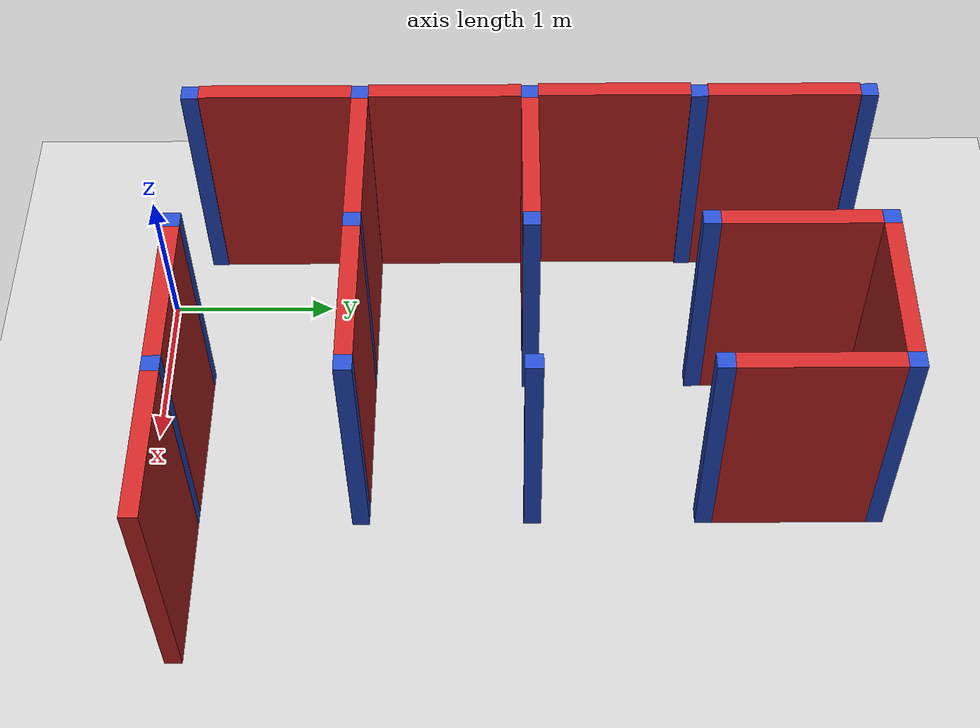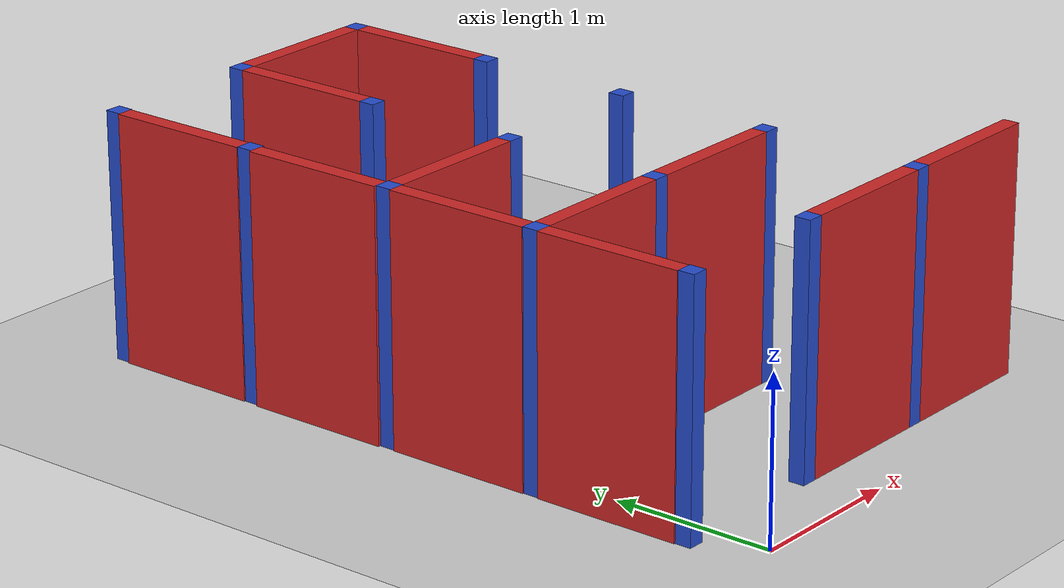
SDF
<sdf version="1.7">
 <world name="default">
  <model name="ground_plane">
   <static>1</static>
   <link name="link">
    <collision name="collision">
     <geometry><plane><normal>0 0 1</normal><size>100 100</size></plane></geometry>
     <surface><friction><ode><mu>100</mu><mu2>50</mu2></ode></friction></surface>
    </collision>
    <visual name="visual">
     <cast_shadows>0</cast_shadows>
     <geometry><plane><normal>0 0 1</normal><size>100 100</size></plane></geometry>
     <material>
      <script><uri>file://media/materials/scripts/gazebo.material</uri><name>Gazebo/Grey</name></script>
     </material>
    </visual>
   </link>
  </model>
  <model name="maze_demo">
   <link name="Joint_5_-11">
    <pose>5 -11 0 0 -0 0</pose>
    <visual name="Wall_2_Visual">
     <pose>0 0 0.75 0 -0 0</pose>
     <geometry><box><size>0.1 0.1 1.5</size></box></geometry>
     <material>
      <script><uri>file://media/materials/scripts/gazebo.material</uri><name>Gazebo/Blue</name></script>
      <ambient>0.996078 0.47451 0.0196078 1</ambient>
      <shader type="pixel"/>
     </material>
     <meta><layer>0</layer></meta>
    </visual>
    <collision name="Wall_2_Collision">
     <pose>0 0 0.75 0 -0 0</pose>
     <geometry><box><size>0.1 0.1 1.5</size></box></geometry>
     <surface>
      <friction>
       <ode><mu>1</mu><mu2>1</mu2><fdir1>0 0 0</fdir1><slip1>0</slip1><slip2>0</slip2></ode>
       <torsional>
        <coefficient>1</coefficient>
        <patch_radius>0</patch_radius>
        <surface_radius>0</surface_radius>
        <use_patch_radius>1</use_patch_radius>
        <ode><slip>0</slip></ode>
       </torsional>
      </friction>
      <bounce><restitution_coefficient>0</restitution_coefficient><threshold>1e+06</threshold></bounce>
      <contact>
       <collide_without_contact>0</collide_without_contact>
       <collide_without_contact_bitmask>1</collide_without_contact_bitmask>
       <collide_bitmask>1</collide_bitmask>
       <ode>
        <soft_cfm>0</soft_cfm>
        <soft_erp>0.2</soft_erp>
        <kp>1e+13</kp>
        <kd>1</kd>
        <max_vel>0.01</max_vel>
        <min_depth>0</min_depth>
       </ode>
       <bullet>
        <split_impulse>1</split_impulse>
        <split_impulse_penetration_threshold>-0.01</split_impulse_penetration_threshold>
        <soft_cfm>0</soft_cfm>
        <soft_erp>0.2</soft_erp>
        <kp>1e+13</kp>
        <kd>1</kd>
       </bullet>
      </contact>
     </surface>
    </collision>
   </link>
   <link name="Joint_5_-12">
    <pose>5 -12 0 0 -0 0</pose>
    <visual name="Wall_2_Visual">
     <pose>0 0 0.75 0 -0 0</pose>
     <geometry><box><size>0.1 0.1 1.5</size></box></geometry>
     <material>
      <script><uri>file://media/materials/scripts/gazebo.material</uri><name>Gazebo/Blue</name></script>
      <ambient>0.996078 0.47451 0.0196078 1</ambient>
      <shader type="pixel"/>
     </material>
     <meta><layer>0</layer></meta>
    </visual>
    <collision name="Wall_2_Collision">
     <pose>0 0 0.75 0 -0 0</pose>
     <geometry><box><size>0.1 0.1 1.5</size></box></geometry>
     <surface>
      <friction>
       <ode><mu>1</mu><mu2>1</mu2><fdir1>0 0 0</fdir1><slip1>0</slip1><slip2>0</slip2></ode>
       <torsional>
        <coefficient>1</coefficient>
        <patch_radius>0</patch_radius>
        <surface_radius>0</surface_radius>
        <use_patch_radius>1</use_patch_radius>
        <ode><slip>0</slip></ode>
       </torsional>
      </friction>
      <bounce><restitution_coefficient>0</restitution_coefficient><threshold>1e+06</threshold></bounce>
      <contact>
       <collide_without_contact>0</collide_without_contact>
       <collide_without_contact_bitmask>1</collide_without_contact_bitmask>
       <collide_bitmask>1</collide_bitmask>
       <ode>
        <soft_cfm>0</soft_cfm>
        <soft_erp>0.2</soft_erp>
        <kp>1e+13</kp>
        <kd>1</kd>
        <max_vel>0.01</max_vel>
        <min_depth>0</min_depth>
       </ode>
       <bullet>
        <split_impulse>1</split_impulse>
        <split_impulse_penetration_threshold>-0.01</split_impulse_penetration_threshold>
        <soft_cfm>0</soft_cfm>
        <soft_erp>0.2</soft_erp>
        <kp>1e+13</kp>
        <kd>1</kd>
       </bullet>
      </contact>
     </surface>
    </collision>
   </link>
   <link name="Joint_5_-13">
    <pose>5 -13 0 0 -0 0</pose>
    <visual name="Wall_2_Visual">
     <pose>0 0 0.75 0 -0 0</pose>
     <geometry><box><size>0.1 0.1 1.5</size></box></geometry>
     <material>
      <script><uri>file://media/materials/scripts/gazebo.material</uri><name>Gazebo/Blue</name></script>
      <ambient>0.996078 0.47451 0.0196078 1</ambient>
      <shader type="pixel"/>
     </material>
     <meta><layer>0</layer></meta>
    </visual>
    <collision name="Wall_2_Collision">
     <pose>0 0 0.75 0 -0 0</pose>
     <geometry><box><size>0.1 0.1 1.5</size></box></geometry>
     <surface>
      <friction>
       <ode><mu>1</mu><mu2>1</mu2><fdir1>0 0 0</fdir1><slip1>0</slip1><slip2>0</slip2></ode>
       <torsional>
        <coefficient>1</coefficient>
        <patch_radius>0</patch_radius>
        <surface_radius>0</surface_radius>
        <use_patch_radius>1</use_patch_radius>
        <ode><slip>0</slip></ode>
       </torsional>
      </friction>
      <bounce><restitution_coefficient>0</restitution_coefficient><threshold>1e+06</threshold></bounce>
      <contact>
       <collide_without_contact>0</collide_without_contact>
       <collide_without_contact_bitmask>1</collide_without_contact_bitmask>
       <collide_bitmask>1</collide_bitmask>
       <ode>
        <soft_cfm>0</soft_cfm>
        <soft_erp>0.2</soft_erp>
        <kp>1e+13</kp>
        <kd>1</kd>
        <max_vel>0.01</max_vel>
        <min_depth>0</min_depth>
       </ode>
       <bullet>
        <split_impulse>1</split_impulse>
        <split_impulse_penetration_threshold>-0.01</split_impulse_penetration_threshold>
        <soft_cfm>0</soft_cfm>
        <soft_erp>0.2</soft_erp>
        <kp>1e+13</kp>
        <kd>1</kd>
       </bullet>
      </contact>
     </surface>
    </collision>
   </link>
   <link name="Joint_5_-14">
    <pose>5 -14 0 0 -0 0</pose>
    <visual name="Wall_2_Visual">
     <pose>0 0 0.75 0 -0 0</pose>
     <geometry><box><size>0.1 0.1 1.5</size></box></geometry>
     <material>
      <script><uri>file://media/materials/scripts/gazebo.material</uri><name>Gazebo/Blue</name></script>
      <ambient>0.996078 0.47451 0.0196078 1</ambient>
      <shader type="pixel"/>
     </material>
     <meta><layer>0</layer></meta>
    </visual>
    <collision name="Wall_2_Collision">
     <pose>0 0 0.75 0 -0 0</pose>
     <geometry><box><size>0.1 0.1 1.5</size></box></geometry>
     <surface>
      <friction>
       <ode><mu>1</mu><mu2>1</mu2><fdir1>0 0 0</fdir1><slip1>0</slip1><slip2>0</slip2></ode>
       <torsional>
        <coefficient>1</coefficient>
        <patch_radius>0</patch_radius>
        <surface_radius>0</surface_radius>
        <use_patch_radius>1</use_patch_radius>
        <ode><slip>0</slip></ode>
       </torsional>
      </friction>
      <bounce><restitution_coefficient>0</restitution_coefficient><threshold>1e+06</threshold></bounce>
      <contact>
       <collide_without_contact>0</collide_without_contact>
       <collide_without_contact_bitmask>1</collide_without_contact_bitmask>
       <collide_bitmask>1</collide_bitmask>
       <ode>
        <soft_cfm>0</soft_cfm>
        <soft_erp>0.2</soft_erp>
        <kp>1e+13</kp>
        <kd>1</kd>
        <max_vel>0.01</max_vel>
        <min_depth>0</min_depth>
       </ode>
       <bullet>
        <split_impulse>1</split_impulse>
        <split_impulse_penetration_threshold>-0.01</split_impulse_penetration_threshold>
        <soft_cfm>0</soft_cfm>
        <soft_erp>0.2</soft_erp>
        <kp>1e+13</kp>
        <kd>1</kd>
       </bullet>
      </contact>
     </surface>
    </collision>
   </link>
   <link name="Joint_5_-15">
    <pose>5 -15 0 0 -0 0</pose>
    <visual name="Wall_2_Visual">
     <pose>0 0 0.75 0 -0 0</pose>
     <geometry><box><size>0.1 0.1 1.5</size></box></geometry>
     <material>
      <script><uri>file://media/materials/scripts/gazebo.material</uri><name>Gazebo/Blue</name></script>
      <ambient>0.996078 0.47451 0.0196078 1</ambient>
      <shader type="pixel"/>
     </material>
     <meta><layer>0</layer></meta>
    </visual>
    <collision name="Wall_2_Collision">
     <pose>0 0 0.75 0 -0 0</pose>
     <geometry><box><size>0.1 0.1 1.5</size></box></geometry>
     <surface>
      <friction>
       <ode><mu>1</mu><mu2>1</mu2><fdir1>0 0 0</fdir1><slip1>0</slip1><slip2>0</slip2></ode>
       <torsional>
        <coefficient>1</coefficient>
        <patch_radius>0</patch_radius>
        <surface_radius>0</surface_radius>
        <use_patch_radius>1</use_patch_radius>
        <ode><slip>0</slip></ode>
       </torsional>
      </friction>
      <bounce><restitution_coefficient>0</restitution_coefficient><threshold>1e+06</threshold></bounce>
      <contact>
       <collide_without_contact>0</collide_without_contact>
       <collide_without_contact_bitmask>1</collide_without_contact_bitmask>
       <collide_bitmask>1</collide_bitmask>
       <ode>
        <soft_cfm>0</soft_cfm>
        <soft_erp>0.2</soft_erp>
        <kp>1e+13</kp>
        <kd>1</kd>
        <max_vel>0.01</max_vel>
        <min_depth>0</min_depth>
       </ode>
       <bullet>
        <split_impulse>1</split_impulse>
        <split_impulse_penetration_threshold>-0.01</split_impulse_penetration_threshold>
        <soft_cfm>0</soft_cfm>
        <soft_erp>0.2</soft_erp>
        <kp>1e+13</kp>
        <kd>1</kd>
       </bullet>
      </contact>
     </surface>
    </collision>
   </link>
   <link name="Joint_6_-11">
    <pose>6 -11 0 0 -0 0</pose>
    <visual name="Wall_2_Visual">
     <pose>0 0 0.75 0 -0 0</pose>
     <geometry><box><size>0.1 0.1 1.5</size></box></geometry>
     <material>
      <script><uri>file://media/materials/scripts/gazebo.material</uri><name>Gazebo/Blue</name></script>
      <ambient>0.996078 0.47451 0.0196078 1</ambient>
      <shader type="pixel"/>
     </material>
     <meta><layer>0</layer></meta>
    </visual>
    <collision name="Wall_2_Collision">
     <pose>0 0 0.75 0 -0 0</pose>
     <geometry><box><size>0.1 0.1 1.5</size></box></geometry>
     <surface>
      <friction>
       <ode><mu>1</mu><mu2>1</mu2><fdir1>0 0 0</fdir1><slip1>0</slip1><slip2>0</slip2></ode>
       <torsional>
        <coefficient>1</coefficient>
        <patch_radius>0</patch_radius>
        <surface_radius>0</surface_radius>
        <use_patch_radius>1</use_patch_radius>
        <ode><slip>0</slip></ode>
       </torsional>
      </friction>
      <bounce><restitution_coefficient>0</restitution_coefficient><threshold>1e+06</threshold></bounce>
      <contact>
       <collide_without_contact>0</collide_without_contact>
       <collide_without_contact_bitmask>1</collide_without_contact_bitmask>
       <collide_bitmask>1</collide_bitmask>
       <ode>
        <soft_cfm>0</soft_cfm>
        <soft_erp>0.2</soft_erp>
        <kp>1e+13</kp>
        <kd>1</kd>
        <max_vel>0.01</max_vel>
        <min_depth>0</min_depth>
       </ode>
       <bullet>
        <split_impulse>1</split_impulse>
        <split_impulse_penetration_threshold>-0.01</split_impulse_penetration_threshold>
        <soft_cfm>0</soft_cfm>
        <soft_erp>0.2</soft_erp>
        <kp>1e+13</kp>
        <kd>1</kd>
       </bullet>
      </contact>
     </surface>
    </collision>
   </link>
   <link name="Joint_6_-12">
    <pose>6 -12 0 0 -0 0</pose>
    <visual name="Wall_2_Visual">
     <pose>0 0 0.75 0 -0 0</pose>
     <geometry><box><size>0.1 0.1 1.5</size></box></geometry>
     <material>
      <script><uri>file://media/materials/scripts/gazebo.material</uri><name>Gazebo/Blue</name></script>
      <ambient>0.996078 0.47451 0.0196078 1</ambient>
      <shader type="pixel"/>
     </material>
     <meta><layer>0</layer></meta>
    </visual>
    <collision name="Wall_2_Collision">
     <pose>0 0 0.75 0 -0 0</pose>
     <geometry><box><size>0.1 0.1 1.5</size></box></geometry>
     <surface>
      <friction>
       <ode><mu>1</mu><mu2>1</mu2><fdir1>0 0 0</fdir1><slip1>0</slip1><slip2>0</slip2></ode>
       <torsional>
        <coefficient>1</coefficient>
        <patch_radius>0</patch_radius>
        <surface_radius>0</surface_radius>
        <use_patch_radius>1</use_patch_radius>
        <ode><slip>0</slip></ode>
       </torsional>
      </friction>
      <bounce><restitution_coefficient>0</restitution_coefficient><threshold>1e+06</threshold></bounce>
      <contact>
       <collide_without_contact>0</collide_without_contact>
       <collide_without_contact_bitmask>1</collide_without_contact_bitmask>
       <collide_bitmask>1</collide_bitmask>
       <ode>
        <soft_cfm>0</soft_cfm>
        <soft_erp>0.2</soft_erp>
        <kp>1e+13</kp>
        <kd>1</kd>
        <max_vel>0.01</max_vel>
        <min_depth>0</min_depth>
       </ode>
       <bullet>
        <split_impulse>1</split_impulse>
        <split_impulse_penetration_threshold>-0.01</split_impulse_penetration_threshold>
        <soft_cfm>0</soft_cfm>
        <soft_erp>0.2</soft_erp>
        <kp>1e+13</kp>
        <kd>1</kd>
       </bullet>
      </contact>
     </surface>
    </collision>
   </link>
   <link name="Joint_6_-13">
    <pose>6 -13 0 0 -0 0</pose>
    <visual name="Wall_2_Visual">
     <pose>0 0 0.75 0 -0 0</pose>
     <geometry><box><size>0.1 0.1 1.5</size></box></geometry>
     <material>
      <script><uri>file://media/materials/scripts/gazebo.material</uri><name>Gazebo/Blue</name></script>
      <ambient>0.996078 0.47451 0.0196078 1</ambient>
      <shader type="pixel"/>
     </material>
     <meta><layer>0</layer></meta>
    </visual>
    <collision name="Wall_2_Collision">
     <pose>0 0 0.75 0 -0 0</pose>
     <geometry><box><size>0.1 0.1 1.5</size></box></geometry>
     <surface>
      <friction>
       <ode><mu>1</mu><mu2>1</mu2><fdir1>0 0 0</fdir1><slip1>0</slip1><slip2>0</slip2></ode>
       <torsional>
        <coefficient>1</coefficient>
        <patch_radius>0</patch_radius>
        <surface_radius>0</surface_radius>
        <use_patch_radius>1</use_patch_radius>
        <ode><slip>0</slip></ode>
       </torsional>
      </friction>
      <bounce><restitution_coefficient>0</restitution_coefficient><threshold>1e+06</threshold></bounce>
      <contact>
       <collide_without_contact>0</collide_without_contact>
       <collide_without_contact_bitmask>1</collide_without_contact_bitmask>
       <collide_bitmask>1</collide_bitmask>
       <ode>
        <soft_cfm>0</soft_cfm>
        <soft_erp>0.2</soft_erp>
        <kp>1e+13</kp>
        <kd>1</kd>
        <max_vel>0.01</max_vel>
        <min_depth>0</min_depth>
       </ode>
       <bullet>
        <split_impulse>1</split_impulse>
        <split_impulse_penetration_threshold>-0.01</split_impulse_penetration_threshold>
        <soft_cfm>0</soft_cfm>
        <soft_erp>0.2</soft_erp>
        <kp>1e+13</kp>
        <kd>1</kd>
       </bullet>
      </contact>
     </surface>
    </collision>
   </link>
   <link name="Joint_6_-14">
    <pose>6 -14 0 0 -0 0</pose>
    <visual name="Wall_2_Visual">
     <pose>0 0 0.75 0 -0 0</pose>
     <geometry><box><size>0.1 0.1 1.5</size></box></geometry>
     <material>
      <script><uri>file://media/materials/scripts/gazebo.material</uri><name>Gazebo/Blue</name></script>
      <ambient>0.996078 0.47451 0.0196078 1</ambient>
      <shader type="pixel"/>
     </material>
     <meta><layer>0</layer></meta>
    </visual>
    <collision name="Wall_2_Collision">
     <pose>0 0 0.75 0 -0 0</pose>
     <geometry><box><size>0.1 0.1 1.5</size></box></geometry>
     <surface>
      <friction>
       <ode><mu>1</mu><mu2>1</mu2><fdir1>0 0 0</fdir1><slip1>0</slip1><slip2>0</slip2></ode>
       <torsional>
        <coefficient>1</coefficient>
        <patch_radius>0</patch_radius>
        <surface_radius>0</surface_radius>
        <use_patch_radius>1</use_patch_radius>
        <ode><slip>0</slip></ode>
       </torsional>
      </friction>
      <bounce><restitution_coefficient>0</restitution_coefficient><threshold>1e+06</threshold></bounce>
      <contact>
       <collide_without_contact>0</collide_without_contact>
       <collide_without_contact_bitmask>1</collide_without_contact_bitmask>
       <collide_bitmask>1</collide_bitmask>
       <ode>
        <soft_cfm>0</soft_cfm>
        <soft_erp>0.2</soft_erp>
        <kp>1e+13</kp>
        <kd>1</kd>
        <max_vel>0.01</max_vel>
        <min_depth>0</min_depth>
       </ode>
       <bullet>
        <split_impulse>1</split_impulse>
        <split_impulse_penetration_threshold>-0.01</split_impulse_penetration_threshold>
        <soft_cfm>0</soft_cfm>
        <soft_erp>0.2</soft_erp>
        <kp>1e+13</kp>
        <kd>1</kd>
       </bullet>
      </contact>
     </surface>
    </collision>
   </link>
   <link name="Joint_6_-15">
    <pose>6 -15 0 0 -0 0</pose>
    <visual name="Wall_2_Visual">
     <pose>0 0 0.75 0 -0 0</pose>
     <geometry><box><size>0.1 0.1 1.5</size></box></geometry>
     <material>
      <script><uri>file://media/materials/scripts/gazebo.material</uri><name>Gazebo/Blue</name></script>
      <ambient>0.996078 0.47451 0.0196078 1</ambient>
      <shader type="pixel"/>
     </material>
     <meta><layer>0</layer></meta>
    </visual>
    <collision name="Wall_2_Collision">
     <pose>0 0 0.75 0 -0 0</pose>
     <geometry><box><size>0.1 0.1 1.5</size></box></geometry>
     <surface>
      <friction>
       <ode><mu>1</mu><mu2>1</mu2><fdir1>0 0 0</fdir1><slip1>0</slip1><slip2>0</slip2></ode>
       <torsional>
        <coefficient>1</coefficient>
        <patch_radius>0</patch_radius>
        <surface_radius>0</surface_radius>
        <use_patch_radius>1</use_patch_radius>
        <ode><slip>0</slip></ode>
       </torsional>
      </friction>
      <bounce><restitution_coefficient>0</restitution_coefficient><threshold>1e+06</threshold></bounce>
      <contact>
       <collide_without_contact>0</collide_without_contact>
       <collide_without_contact_bitmask>1</collide_without_contact_bitmask>
       <collide_bitmask>1</collide_bitmask>
       <ode>
        <soft_cfm>0</soft_cfm>
        <soft_erp>0.2</soft_erp>
        <kp>1e+13</kp>
        <kd>1</kd>
        <max_vel>0.01</max_vel>
        <min_depth>0</min_depth>
       </ode>
       <bullet>
        <split_impulse>1</split_impulse>
        <split_impulse_penetration_threshold>-0.01</split_impulse_penetration_threshold>
        <soft_cfm>0</soft_cfm>
        <soft_erp>0.2</soft_erp>
        <kp>1e+13</kp>
        <kd>1</kd>
       </bullet>
      </contact>
     </surface>
    </collision>
   </link>
   <link name="Joint_7_-11">
    <pose>7 -11 0 0 -0 0</pose>
    <visual name="Wall_2_Visual">
     <pose>0 0 0.75 0 -0 0</pose>
     <geometry><box><size>0.1 0.1 1.5</size></box></geometry>
     <material>
      <script><uri>file://media/materials/scripts/gazebo.material</uri><name>Gazebo/Blue</name></script>
      <ambient>0.996078 0.47451 0.0196078 1</ambient>
      <shader type="pixel"/>
     </material>
     <meta><layer>0</layer></meta>
    </visual>
    <collision name="Wall_2_Collision">
     <pose>0 0 0.75 0 -0 0</pose>
     <geometry><box><size>0.1 0.1 1.5</size></box></geometry>
     <surface>
      <friction>
       <ode><mu>1</mu><mu2>1</mu2><fdir1>0 0 0</fdir1><slip1>0</slip1><slip2>0</slip2></ode>
       <torsional>
        <coefficient>1</coefficient>
        <patch_radius>0</patch_radius>
        <surface_radius>0</surface_radius>
        <use_patch_radius>1</use_patch_radius>
        <ode><slip>0</slip></ode>
       </torsional>
      </friction>
      <bounce><restitution_coefficient>0</restitution_coefficient><threshold>1e+06</threshold></bounce>
      <contact>
       <collide_without_contact>0</collide_without_contact>
       <collide_without_contact_bitmask>1</collide_without_contact_bitmask>
       <collide_bitmask>1</collide_bitmask>
       <ode>
        <soft_cfm>0</soft_cfm>
        <soft_erp>0.2</soft_erp>
        <kp>1e+13</kp>
        <kd>1</kd>
        <max_vel>0.01</max_vel>
        <min_depth>0</min_depth>
       </ode>
       <bullet>
        <split_impulse>1</split_impulse>
        <split_impulse_penetration_threshold>-0.01</split_impulse_penetration_threshold>
        <soft_cfm>0</soft_cfm>
        <soft_erp>0.2</soft_erp>
        <kp>1e+13</kp>
        <kd>1</kd>
       </bullet>
      </contact>
     </surface>
    </collision>
   </link>
   <link name="Joint_7_-12">
    <pose>7 -12 0 0 -0 0</pose>
    <visual name="Wall_2_Visual">
     <pose>0 0 0.75 0 -0 0</pose>
     <geometry><box><size>0.1 0.1 1.5</size></box></geometry>
     <material>
      <script><uri>file://media/materials/scripts/gazebo.material</uri><name>Gazebo/Blue</name></script>
      <ambient>0.996078 0.47451 0.0196078 1</ambient>
      <shader type="pixel"/>
     </material>
     <meta><layer>0</layer></meta>
    </visual>
    <collision name="Wall_2_Collision">
     <pose>0 0 0.75 0 -0 0</pose>
     <geometry><box><size>0.1 0.1 1.5</size></box></geometry>
     <surface>
      <friction>
       <ode><mu>1</mu><mu2>1</mu2><fdir1>0 0 0</fdir1><slip1>0</slip1><slip2>0</slip2></ode>
       <torsional>
        <coefficient>1</coefficient>
        <patch_radius>0</patch_radius>
        <surface_radius>0</surface_radius>
        <use_patch_radius>1</use_patch_radius>
        <ode><slip>0</slip></ode>
       </torsional>
      </friction>
      <bounce><restitution_coefficient>0</restitution_coefficient><threshold>1e+06</threshold></bounce>
      <contact>
       <collide_without_contact>0</collide_without_contact>
       <collide_without_contact_bitmask>1</collide_without_contact_bitmask>
       <collide_bitmask>1</collide_bitmask>
       <ode>
        <soft_cfm>0</soft_cfm>
        <soft_erp>0.2</soft_erp>
        <kp>1e+13</kp>
        <kd>1</kd>
        <max_vel>0.01</max_vel>
        <min_depth>0</min_depth>
       </ode>
       <bullet>
        <split_impulse>1</split_impulse>
        <split_impulse_penetration_threshold>-0.01</split_impulse_penetration_threshold>
        <soft_cfm>0</soft_cfm>
        <soft_erp>0.2</soft_erp>
        <kp>1e+13</kp>
        <kd>1</kd>
       </bullet>
      </contact>
     </surface>
    </collision>
   </link>
   <link name="Joint_7_-13">
    <pose>7 -13 0 0 -0 0</pose>
    <visual name="Wall_2_Visual">
     <pose>0 0 0.75 0 -0 0</pose>
     <geometry><box><size>0.1 0.1 1.5</size></box></geometry>
     <material>
      <script><uri>file://media/materials/scripts/gazebo.material</uri><name>Gazebo/Blue</name></script>
      <ambient>0.996078 0.47451 0.0196078 1</ambient>
      <shader type="pixel"/>
     </material>
     <meta><layer>0</layer></meta>
    </visual>
    <collision name="Wall_2_Collision">
     <pose>0 0 0.75 0 -0 0</pose>
     <geometry><box><size>0.1 0.1 1.5</size></box></geometry>
     <surface>
      <friction>
       <ode><mu>1</mu><mu2>1</mu2><fdir1>0 0 0</fdir1><slip1>0</slip1><slip2>0</slip2></ode>
       <torsional>
        <coefficient>1</coefficient>
        <patch_radius>0</patch_radius>
        <surface_radius>0</surface_radius>
        <use_patch_radius>1</use_patch_radius>
        <ode><slip>0</slip></ode>
       </torsional>
      </friction>
      <bounce><restitution_coefficient>0</restitution_coefficient><threshold>1e+06</threshold></bounce>
      <contact>
       <collide_without_contact>0</collide_without_contact>
       <collide_without_contact_bitmask>1</collide_without_contact_bitmask>
       <collide_bitmask>1</collide_bitmask>
       <ode>
        <soft_cfm>0</soft_cfm>
        <soft_erp>0.2</soft_erp>
        <kp>1e+13</kp>
        <kd>1</kd>
        <max_vel>0.01</max_vel>
        <min_depth>0</min_depth>
       </ode>
       <bullet>
        <split_impulse>1</split_impulse>
        <split_impulse_penetration_threshold>-0.01</split_impulse_penetration_threshold>
        <soft_cfm>0</soft_cfm>
        <soft_erp>0.2</soft_erp>
        <kp>1e+13</kp>
        <kd>1</kd>
       </bullet>
      </contact>
     </surface>
    </collision>
   </link>
   <link name="Joint_7_-14">
    <pose>7 -14 0 0 -0 0</pose>
    <visual name="Wall_2_Visual">
     <pose>0 0 0.75 0 -0 0</pose>
     <geometry><box><size>0.1 0.1 1.5</size></box></geometry>
     <material>
      <script><uri>file://media/materials/scripts/gazebo.material</uri><name>Gazebo/Blue</name></script>
      <ambient>0.996078 0.47451 0.0196078 1</ambient>
      <shader type="pixel"/>
     </material>
     <meta><layer>0</layer></meta>
    </visual>
    <collision name="Wall_2_Collision">
     <pose>0 0 0.75 0 -0 0</pose>
     <geometry><box><size>0.1 0.1 1.5</size></box></geometry>
     <surface>
      <friction>
       <ode><mu>1</mu><mu2>1</mu2><fdir1>0 0 0</fdir1><slip1>0</slip1><slip2>0</slip2></ode>
       <torsional>
        <coefficient>1</coefficient>
        <patch_radius>0</patch_radius>
        <surface_radius>0</surface_radius>
        <use_patch_radius>1</use_patch_radius>
        <ode><slip>0</slip></ode>
       </torsional>
      </friction>
      <bounce><restitution_coefficient>0</restitution_coefficient><threshold>1e+06</threshold></bounce>
      <contact>
       <collide_without_contact>0</collide_without_contact>
       <collide_without_contact_bitmask>1</collide_without_contact_bitmask>
       <collide_bitmask>1</collide_bitmask>
       <ode>
        <soft_cfm>0</soft_cfm>
        <soft_erp>0.2</soft_erp>
        <kp>1e+13</kp>
        <kd>1</kd>
        <max_vel>0.01</max_vel>
        <min_depth>0</min_depth>
       </ode>
       <bullet>
        <split_impulse>1</split_impulse>
        <split_impulse_penetration_threshold>-0.01</split_impulse_penetration_threshold>
        <soft_cfm>0</soft_cfm>
        <soft_erp>0.2</soft_erp>
        <kp>1e+13</kp>
        <kd>1</kd>
       </bullet>
      </contact>
     </surface>
    </collision>
   </link>
   <link name="Joint_7_-15">
    <pose>7 -15 0 0 -0 0</pose>
    <visual name="Wall_2_Visual">
     <pose>0 0 0.75 0 -0 0</pose>
     <geometry><box><size>0.1 0.1 1.5</size></box></geometry>
     <material>
      <script><uri>file://media/materials/scripts/gazebo.material</uri><name>Gazebo/Blue</name></script>
      <ambient>0.996078 0.47451 0.0196078 1</ambient>
      <shader type="pixel"/>
     </material>
     <meta><layer>0</layer></meta>
    </visual>
    <collision name="Wall_2_Collision">
     <pose>0 0 0.75 0 -0 0</pose>
     <geometry><box><size>0.1 0.1 1.5</size></box></geometry>
     <surface>
      <friction>
       <ode><mu>1</mu><mu2>1</mu2><fdir1>0 0 0</fdir1><slip1>0</slip1><slip2>0</slip2></ode>
       <torsional>
        <coefficient>1</coefficient>
        <patch_radius>0</patch_radius>
        <surface_radius>0</surface_radius>
        <use_patch_radius>1</use_patch_radius>
        <ode><slip>0</slip></ode>
       </torsional>
      </friction>
      <bounce><restitution_coefficient>0</restitution_coefficient><threshold>1e+06</threshold></bounce>
      <contact>
       <collide_without_contact>0</collide_without_contact>
       <collide_without_contact_bitmask>1</collide_without_contact_bitmask>
       <collide_bitmask>1</collide_bitmask>
       <ode>
        <soft_cfm>0</soft_cfm>
        <soft_erp>0.2</soft_erp>
        <kp>1e+13</kp>
        <kd>1</kd>
        <max_vel>0.01</max_vel>
        <min_depth>0</min_depth>
       </ode>
       <bullet>
        <split_impulse>1</split_impulse>
        <split_impulse_penetration_threshold>-0.01</split_impulse_penetration_threshold>
        <soft_cfm>0</soft_cfm>
        <soft_erp>0.2</soft_erp>
        <kp>1e+13</kp>
        <kd>1</kd>
       </bullet>
      </contact>
     </surface>
    </collision>
   </link>
   <link name="Wall_2_12_v">
    <pose>4.98419 -12.5 0 0 -0 1.5708</pose>
    <visual name="Wall_0_Visual">
     <pose>0 0 0.75 0 -0 0</pose>
     <geometry><box><size>0.9 0.1 1.5</size></box></geometry>
     <material>
      <script><uri>file://media/materials/scripts/gazebo.material</uri><name>Gazebo/Red</name></script>
      <ambient>0.921569 0.807843 0.615686 1</ambient>
      <shader type="pixel"/>
     </material>
     <meta><layer>0</layer></meta>
    </visual>
    <collision name="Wall_0_Collision">
     <pose>0 0 0.75 0 -0 0</pose>
     <geometry><box><size>0.9 0.1 1.5</size></box></geometry>
     <surface>
      <friction>
       <ode><mu>1</mu><mu2>1</mu2><fdir1>0 0 0</fdir1><slip1>0</slip1><slip2>0</slip2></ode>
       <torsional>
        <coefficient>1</coefficient>
        <patch_radius>0</patch_radius>
        <surface_radius>0</surface_radius>
        <use_patch_radius>1</use_patch_radius>
        <ode><slip>0</slip></ode>
       </torsional>
      </friction>
      <bounce><restitution_coefficient>0</restitution_coefficient><threshold>1e+06</threshold></bounce>
      <contact>
       <collide_without_contact>0</collide_without_contact>
       <collide_without_contact_bitmask>1</collide_without_contact_bitmask>
       <collide_bitmask>1</collide_bitmask>
       <ode>
        <soft_cfm>0</soft_cfm>
        <soft_erp>0.2</soft_erp>
        <kp>1e+13</kp>
        <kd>1</kd>
        <max_vel>0.01</max_vel>
        <min_depth>0</min_depth>
       </ode>
       <bullet>
        <split_impulse>1</split_impulse>
        <split_impulse_penetration_threshold>-0.01</split_impulse_penetration_threshold>
        <soft_cfm>0</soft_cfm>
        <soft_erp>0.2</soft_erp>
        <kp>1e+13</kp>
        <kd>1</kd>
       </bullet>
      </contact>
     </surface>
    </collision>
   </link>
   <link name="Wall_3_13_v">
    <pose>4.99232 -13.5 0 0 -0 1.5708</pose>
    <visual name="Wall_0_Visual">
     <pose>0 0 0.75 0 -0 0</pose>
     <geometry><box><size>0.9 0.1 1.5</size></box></geometry>
     <material>
      <script><uri>file://media/materials/scripts/gazebo.material</uri><name>Gazebo/Red</name></script>
      <ambient>0.921569 0.807843 0.615686 1</ambient>
      <shader type="pixel"/>
     </material>
     <meta><layer>0</layer></meta>
    </visual>
    <collision name="Wall_0_Collision">
     <pose>0 0 0.75 0 -0 0</pose>
     <geometry><box><size>0.9 0.1 1.5</size></box></geometry>
     <surface>
      <friction>
       <ode><mu>1</mu><mu2>1</mu2><fdir1>0 0 0</fdir1><slip1>0</slip1><slip2>0</slip2></ode>
       <torsional>
        <coefficient>1</coefficient>
        <patch_radius>0</patch_radius>
        <surface_radius>0</surface_radius>
        <use_patch_radius>1</use_patch_radius>
        <ode><slip>0</slip></ode>
       </torsional>
      </friction>
      <bounce><restitution_coefficient>0</restitution_coefficient><threshold>1e+06</threshold></bounce>
      <contact>
       <collide_without_contact>0</collide_without_contact>
       <collide_without_contact_bitmask>1</collide_without_contact_bitmask>
       <collide_bitmask>1</collide_bitmask>
       <ode>
        <soft_cfm>0</soft_cfm>
        <soft_erp>0.2</soft_erp>
        <kp>1e+13</kp>
        <kd>1</kd>
        <max_vel>0.01</max_vel>
        <min_depth>0</min_depth>
       </ode>
       <bullet>
        <split_impulse>1</split_impulse>
        <split_impulse_penetration_threshold>-0.01</split_impulse_penetration_threshold>
        <soft_cfm>0</soft_cfm>
        <soft_erp>0.2</soft_erp>
        <kp>1e+13</kp>
        <kd>1</kd>
       </bullet>
      </contact>
     </surface>
    </collision>
   </link>
   <link name="Wall_4_11_v">
    <pose>4.99166 -11.5 0 0 -0 1.5708</pose>
    <visual name="Wall_0_Visual">
     <pose>0 0 0.75 0 -0 0</pose>
     <geometry><box><size>0.9 0.1 1.5</size></box></geometry>
     <material>
      <script><uri>file://media/materials/scripts/gazebo.material</uri><name>Gazebo/Red</name></script>
      <ambient>0.921569 0.807843 0.615686 1</ambient>
      <shader type="pixel"/>
     </material>
     <meta><layer>0</layer></meta>
    </visual>
    <collision name="Wall_0_Collision">
     <pose>0 0 0.75 0 -0 0</pose>
     <geometry><box><size>0.9 0.1 1.5</size></box></geometry>
     <surface>
      <friction>
       <ode><mu>1</mu><mu2>1</mu2><fdir1>0 0 0</fdir1><slip1>0</slip1><slip2>0</slip2></ode>
       <torsional>
        <coefficient>1</coefficient>
        <patch_radius>0</patch_radius>
        <surface_radius>0</surface_radius>
        <use_patch_radius>1</use_patch_radius>
        <ode><slip>0</slip></ode>
       </torsional>
      </friction>
      <bounce><restitution_coefficient>0</restitution_coefficient><threshold>1e+06</threshold></bounce>
      <contact>
       <collide_without_contact>0</collide_without_contact>
       <collide_without_contact_bitmask>1</collide_without_contact_bitmask>
       <collide_bitmask>1</collide_bitmask>
       <ode>
        <soft_cfm>0</soft_cfm>
        <soft_erp>0.2</soft_erp>
        <kp>1e+13</kp>
        <kd>1</kd>
        <max_vel>0.01</max_vel>
        <min_depth>0</min_depth>
       </ode>
       <bullet>
        <split_impulse>1</split_impulse>
        <split_impulse_penetration_threshold>-0.01</split_impulse_penetration_threshold>
        <soft_cfm>0</soft_cfm>
        <soft_erp>0.2</soft_erp>
        <kp>1e+13</kp>
        <kd>1</kd>
       </bullet>
      </contact>
     </surface>
    </collision>
   </link>
   <link name="Wall_4_14_v">
    <pose>4.9929 -14.5 0 0 -0 1.5708</pose>
    <visual name="Wall_0_Visual">
     <pose>0 0 0.75 0 -0 0</pose>
     <geometry><box><size>0.9 0.1 1.5</size></box></geometry>
     <material>
      <script><uri>file://media/materials/scripts/gazebo.material</uri><name>Gazebo/Red</name></script>
      <ambient>0.921569 0.807843 0.615686 1</ambient>
      <shader type="pixel"/>
     </material>
     <meta><layer>0</layer></meta>
    </visual>
    <collision name="Wall_0_Collision">
     <pose>0 0 0.75 0 -0 0</pose>
     <geometry><box><size>0.9 0.1 1.5</size></box></geometry>
     <surface>
      <friction>
       <ode><mu>1</mu><mu2>1</mu2><fdir1>0 0 0</fdir1><slip1>0</slip1><slip2>0</slip2></ode>
       <torsional>
        <coefficient>1</coefficient>
        <patch_radius>0</patch_radius>
        <surface_radius>0</surface_radius>
        <use_patch_radius>1</use_patch_radius>
        <ode><slip>0</slip></ode>
       </torsional>
      </friction>
      <bounce><restitution_coefficient>0</restitution_coefficient><threshold>1e+06</threshold></bounce>
      <contact>
       <collide_without_contact>0</collide_without_contact>
       <collide_without_contact_bitmask>1</collide_without_contact_bitmask>
       <collide_bitmask>1</collide_bitmask>
       <ode>
        <soft_cfm>0</soft_cfm>
        <soft_erp>0.2</soft_erp>
        <kp>1e+13</kp>
        <kd>1</kd>
        <max_vel>0.01</max_vel>
        <min_depth>0</min_depth>
       </ode>
       <bullet>
        <split_impulse>1</split_impulse>
        <split_impulse_penetration_threshold>-0.01</split_impulse_penetration_threshold>
        <soft_cfm>0</soft_cfm>
        <soft_erp>0.2</soft_erp>
        <kp>1e+13</kp>
        <kd>1</kd>
       </bullet>
      </contact>
     </surface>
    </collision>
   </link>
   <link name="Wall_5_13_h">
    <pose>5.5 -13 0 0 -0 0</pose>
    <visual name="Wall_0_Visual">
     <pose>0 0 0.75 0 -0 0</pose>
     <geometry><box><size>0.9 0.1 1.5</size></box></geometry>
     <material>
      <script><uri>file://media/materials/scripts/gazebo.material</uri><name>Gazebo/Red</name></script>
      <ambient>0.921569 0.807843 0.615686 1</ambient>
      <shader type="pixel"/>
     </material>
     <meta><layer>0</layer></meta>
    </visual>
    <collision name="Wall_0_Collision">
     <pose>0 0 0.75 0 -0 0</pose>
     <geometry><box><size>0.9 0.1 1.5</size></box></geometry>
     <surface>
      <friction>
       <ode><mu>1</mu><mu2>1</mu2><fdir1>0 0 0</fdir1><slip1>0</slip1><slip2>0</slip2></ode>
       <torsional>
        <coefficient>1</coefficient>
        <patch_radius>0</patch_radius>
        <surface_radius>0</surface_radius>
        <use_patch_radius>1</use_patch_radius>
        <ode><slip>0</slip></ode>
       </torsional>
      </friction>
      <bounce><restitution_coefficient>0</restitution_coefficient><threshold>1e+06</threshold></bounce>
      <contact>
       <collide_without_contact>0</collide_without_contact>
       <collide_without_contact_bitmask>1</collide_without_contact_bitmask>
       <collide_bitmask>1</collide_bitmask>
       <ode>
        <soft_cfm>0</soft_cfm>
        <soft_erp>0.2</soft_erp>
        <kp>1e+13</kp>
        <kd>1</kd>
        <max_vel>0.01</max_vel>
        <min_depth>0</min_depth>
       </ode>
       <bullet>
        <split_impulse>1</split_impulse>
        <split_impulse_penetration_threshold>-0.01</split_impulse_penetration_threshold>
        <soft_cfm>0</soft_cfm>
        <soft_erp>0.2</soft_erp>
        <kp>1e+13</kp>
        <kd>1</kd>
       </bullet>
      </contact>
     </surface>
    </collision>
   </link>
   <link name="Wall_5_14_h">
    <pose>5.5 -14 0 0 -0 0</pose>
    <visual name="Wall_0_Visual">
     <pose>0 0 0.75 0 -0 0</pose>
     <geometry><box><size>0.9 0.1 1.5</size></box></geometry>
     <material>
      <script><uri>file://media/materials/scripts/gazebo.material</uri><name>Gazebo/Red</name></script>
      <ambient>0.921569 0.807843 0.615686 1</ambient>
      <shader type="pixel"/>
     </material>
     <meta><layer>0</layer></meta>
    </visual>
    <collision name="Wall_0_Collision">
     <pose>0 0 0.75 0 -0 0</pose>
     <geometry><box><size>0.9 0.1 1.5</size></box></geometry>
     <surface>
      <friction>
       <ode><mu>1</mu><mu2>1</mu2><fdir1>0 0 0</fdir1><slip1>0</slip1><slip2>0</slip2></ode>
       <torsional>
        <coefficient>1</coefficient>
        <patch_radius>0</patch_radius>
        <surface_radius>0</surface_radius>
        <use_patch_radius>1</use_patch_radius>
        <ode><slip>0</slip></ode>
       </torsional>
      </friction>
      <bounce><restitution_coefficient>0</restitution_coefficient><threshold>1e+06</threshold></bounce>
      <contact>
       <collide_without_contact>0</collide_without_contact>
       <collide_without_contact_bitmask>1</collide_without_contact_bitmask>
       <collide_bitmask>1</collide_bitmask>
       <ode>
        <soft_cfm>0</soft_cfm>
        <soft_erp>0.2</soft_erp>
        <kp>1e+13</kp>
        <kd>1</kd>
        <max_vel>0.01</max_vel>
        <min_depth>0</min_depth>
       </ode>
       <bullet>
        <split_impulse>1</split_impulse>
        <split_impulse_penetration_threshold>-0.01</split_impulse_penetration_threshold>
        <soft_cfm>0</soft_cfm>
        <soft_erp>0.2</soft_erp>
        <kp>1e+13</kp>
        <kd>1</kd>
       </bullet>
      </contact>
     </surface>
    </collision>
   </link>
   <link name="Wall_6_11_h">
    <pose>6.5 -11 0 0 -0 0</pose>
    <visual name="Wall_0_Visual">
     <pose>0 0 0.75 0 -0 0</pose>
     <geometry><box><size>0.9 0.1 1.5</size></box></geometry>
     <material>
      <script><uri>file://media/materials/scripts/gazebo.material</uri><name>Gazebo/Red</name></script>
      <ambient>0.921569 0.807843 0.615686 1</ambient>
      <shader type="pixel"/>
     </material>
     <meta><layer>0</layer></meta>
    </visual>
    <collision name="Wall_0_Collision">
     <pose>0 0 0.75 0 -0 0</pose>
     <geometry><box><size>0.9 0.1 1.5</size></box></geometry>
     <surface>
      <friction>
       <ode><mu>1</mu><mu2>1</mu2><fdir1>0 0 0</fdir1><slip1>0</slip1><slip2>0</slip2></ode>
       <torsional>
        <coefficient>1</coefficient>
        <patch_radius>0</patch_radius>
        <surface_radius>0</surface_radius>
        <use_patch_radius>1</use_patch_radius>
        <ode><slip>0</slip></ode>
       </torsional>
      </friction>
      <bounce><restitution_coefficient>0</restitution_coefficient><threshold>1e+06</threshold></bounce>
      <contact>
       <collide_without_contact>0</collide_without_contact>
       <collide_without_contact_bitmask>1</collide_without_contact_bitmask>
       <collide_bitmask>1</collide_bitmask>
       <ode>
        <soft_cfm>0</soft_cfm>
        <soft_erp>0.2</soft_erp>
        <kp>1e+13</kp>
        <kd>1</kd>
        <max_vel>0.01</max_vel>
        <min_depth>0</min_depth>
       </ode>
       <bullet>
        <split_impulse>1</split_impulse>
        <split_impulse_penetration_threshold>-0.01</split_impulse_penetration_threshold>
        <soft_cfm>0</soft_cfm>
        <soft_erp>0.2</soft_erp>
        <kp>1e+13</kp>
        <kd>1</kd>
       </bullet>
      </contact>
     </surface>
    </collision>
   </link>
   <link name="Wall_6_11_v">
    <pose>6 -11.5 0 0 -0 1.5708</pose>
    <visual name="Wall_0_Visual">
     <pose>0 0 0.75 0 -0 0</pose>
     <geometry><box><size>0.9 0.1 1.5</size></box></geometry>
     <material>
      <script><uri>file://media/materials/scripts/gazebo.material</uri><name>Gazebo/Red</name></script>
      <ambient>0.921569 0.807843 0.615686 1</ambient>
      <shader type="pixel"/>
     </material>
     <meta><layer>0</layer></meta>
    </visual>
    <collision name="Wall_0_Collision">
     <pose>0 0 0.75 0 -0 0</pose>
     <geometry><box><size>0.9 0.1 1.5</size></box></geometry>
     <surface>
      <friction>
       <ode><mu>1</mu><mu2>1</mu2><fdir1>0 0 0</fdir1><slip1>0</slip1><slip2>0</slip2></ode>
       <torsional>
        <coefficient>1</coefficient>
        <patch_radius>0</patch_radius>
        <surface_radius>0</surface_radius>
        <use_patch_radius>1</use_patch_radius>
        <ode><slip>0</slip></ode>
       </torsional>
      </friction>
      <bounce><restitution_coefficient>0</restitution_coefficient><threshold>1e+06</threshold></bounce>
      <contact>
       <collide_without_contact>0</collide_without_contact>
       <collide_without_contact_bitmask>1</collide_without_contact_bitmask>
       <collide_bitmask>1</collide_bitmask>
       <ode>
        <soft_cfm>0</soft_cfm>
        <soft_erp>0.2</soft_erp>
        <kp>1e+13</kp>
        <kd>1</kd>
        <max_vel>0.01</max_vel>
        <min_depth>0</min_depth>
       </ode>
       <bullet>
        <split_impulse>1</split_impulse>
        <split_impulse_penetration_threshold>-0.01</split_impulse_penetration_threshold>
        <soft_cfm>0</soft_cfm>
        <soft_erp>0.2</soft_erp>
        <kp>1e+13</kp>
        <kd>1</kd>
       </bullet>
      </contact>
     </surface>
    </collision>
   </link>
   <link name="Wall_6_14_h">
    <pose>6.5 -14 0 0 -0 0</pose>
    <visual name="Wall_0_Visual">
     <pose>0 0 0.75 0 -0 0</pose>
     <geometry><box><size>0.9 0.1 1.5</size></box></geometry>
     <material>
      <script><uri>file://media/materials/scripts/gazebo.material</uri><name>Gazebo/Red</name></script>
      <ambient>0.921569 0.807843 0.615686 1</ambient>
      <shader type="pixel"/>
     </material>
     <meta><layer>0</layer></meta>
    </visual>
    <collision name="Wall_0_Collision">
     <pose>0 0 0.75 0 -0 0</pose>
     <geometry><box><size>0.9 0.1 1.5</size></box></geometry>
     <surface>
      <friction>
       <ode><mu>1</mu><mu2>1</mu2><fdir1>0 0 0</fdir1><slip1>0</slip1><slip2>0</slip2></ode>
       <torsional>
        <coefficient>1</coefficient>
        <patch_radius>0</patch_radius>
        <surface_radius>0</surface_radius>
        <use_patch_radius>1</use_patch_radius>
        <ode><slip>0</slip></ode>
       </torsional>
      </friction>
      <bounce><restitution_coefficient>0</restitution_coefficient><threshold>1e+06</threshold></bounce>
      <contact>
       <collide_without_contact>0</collide_without_contact>
       <collide_without_contact_bitmask>1</collide_without_contact_bitmask>
       <collide_bitmask>1</collide_bitmask>
       <ode>
        <soft_cfm>0</soft_cfm>
        <soft_erp>0.2</soft_erp>
        <kp>1e+13</kp>
        <kd>1</kd>
        <max_vel>0.01</max_vel>
        <min_depth>0</min_depth>
       </ode>
       <bullet>
        <split_impulse>1</split_impulse>
        <split_impulse_penetration_threshold>-0.01</split_impulse_penetration_threshold>
        <soft_cfm>0</soft_cfm>
        <soft_erp>0.2</soft_erp>
        <kp>1e+13</kp>
        <kd>1</kd>
       </bullet>
      </contact>
     </surface>
    </collision>
   </link>
   <link name="Wall_6_15_h">
    <pose>6.5 -15 0 0 -0 0</pose>
    <visual name="Wall_0_Visual">
     <pose>0 0 0.75 0 -0 0</pose>
     <geometry><box><size>0.9 0.1 1.5</size></box></geometry>
     <material>
      <script><uri>file://media/materials/scripts/gazebo.material</uri><name>Gazebo/Red</name></script>
      <ambient>0.921569 0.807843 0.615686 1</ambient>
      <shader type="pixel"/>
     </material>
     <meta><layer>0</layer></meta>
    </visual>
    <collision name="Wall_0_Collision">
     <pose>0 0 0.75 0 -0 0</pose>
     <geometry><box><size>0.9 0.1 1.5</size></box></geometry>
     <surface>
      <friction>
       <ode><mu>1</mu><mu2>1</mu2><fdir1>0 0 0</fdir1><slip1>0</slip1><slip2>0</slip2></ode>
       <torsional>
        <coefficient>1</coefficient>
        <patch_radius>0</patch_radius>
        <surface_radius>0</surface_radius>
        <use_patch_radius>1</use_patch_radius>
        <ode><slip>0</slip></ode>
       </torsional>
      </friction>
      <bounce><restitution_coefficient>0</restitution_coefficient><threshold>1e+06</threshold></bounce>
      <contact>
       <collide_without_contact>0</collide_without_contact>
       <collide_without_contact_bitmask>1</collide_without_contact_bitmask>
       <collide_bitmask>1</collide_bitmask>
       <ode>
        <soft_cfm>0</soft_cfm>
        <soft_erp>0.2</soft_erp>
        <kp>1e+13</kp>
        <kd>1</kd>
        <max_vel>0.01</max_vel>
        <min_depth>0</min_depth>
       </ode>
       <bullet>
        <split_impulse>1</split_impulse>
        <split_impulse_penetration_threshold>-0.01</split_impulse_penetration_threshold>
        <soft_cfm>0</soft_cfm>
        <soft_erp>0.2</soft_erp>
        <kp>1e+13</kp>
        <kd>1</kd>
       </bullet>
      </contact>
     </surface>
    </collision>
   </link>
   <link name="Wall_7_11_v">
    <pose>7 -11.5 0 0 -0 1.5708</pose>
    <visual name="Wall_0_Visual">
     <pose>0 0 0.75 0 -0 0</pose>
     <geometry><box><size>0.9 0.1 1.5</size></box></geometry>
     <material>
      <script><uri>file://media/materials/scripts/gazebo.material</uri><name>Gazebo/Red</name></script>
      <ambient>0.921569 0.807843 0.615686 1</ambient>
      <shader type="pixel"/>
     </material>
     <meta><layer>0</layer></meta>
    </visual>
    <collision name="Wall_0_Collision">
     <pose>0 0 0.75 0 -0 0</pose>
     <geometry><box><size>0.9 0.1 1.5</size></box></geometry>
     <surface>
      <friction>
       <ode><mu>1</mu><mu2>1</mu2><fdir1>0 0 0</fdir1><slip1>0</slip1><slip2>0</slip2></ode>
       <torsional>
        <coefficient>1</coefficient>
        <patch_radius>0</patch_radius>
        <surface_radius>0</surface_radius>
        <use_patch_radius>1</use_patch_radius>
        <ode><slip>0</slip></ode>
       </torsional>
      </friction>
      <bounce><restitution_coefficient>0</restitution_coefficient><threshold>1e+06</threshold></bounce>
      <contact>
       <collide_without_contact>0</collide_without_contact>
       <collide_without_contact_bitmask>1</collide_without_contact_bitmask>
       <collide_bitmask>1</collide_bitmask>
       <ode>
        <soft_cfm>0</soft_cfm>
        <soft_erp>0.2</soft_erp>
        <kp>1e+13</kp>
        <kd>1</kd>
        <max_vel>0.01</max_vel>
        <min_depth>0</min_depth>
       </ode>
       <bullet>
        <split_impulse>1</split_impulse>
        <split_impulse_penetration_threshold>-0.01</split_impulse_penetration_threshold>
        <soft_cfm>0</soft_cfm>
        <soft_erp>0.2</soft_erp>
        <kp>1e+13</kp>
        <kd>1</kd>
       </bullet>
      </contact>
     </surface>
    </collision>
   </link>
   <link name="Wall_7_15_h">
    <pose>7.5 -15 0 0 -0 0</pose>
    <visual name="Wall_0_Visual">
     <pose>0 0 0.75 0 -0 0</pose>
     <geometry><box><size>0.9 0.1 1.5</size></box></geometry>
     <material>
      <script><uri>file://media/materials/scripts/gazebo.material</uri><name>Gazebo/Red</name></script>
      <ambient>0.921569 0.807843 0.615686 1</ambient>
      <shader type="pixel"/>
     </material>
     <meta><layer>0</layer></meta>
    </visual>
    <collision name="Wall_0_Collision">
     <pose>0 0 0.75 0 -0 0</pose>
     <geometry><box><size>0.9 0.1 1.5</size></box></geometry>
     <surface>
      <friction>
       <ode><mu>1</mu><mu2>1</mu2><fdir1>0 0 0</fdir1><slip1>0</slip1><slip2>0</slip2></ode>
       <torsional>
        <coefficient>1</coefficient>
        <patch_radius>0</patch_radius>
        <surface_radius>0</surface_radius>
        <use_patch_radius>1</use_patch_radius>
        <ode><slip>0</slip></ode>
       </torsional>
      </friction>
      <bounce><restitution_coefficient>0</restitution_coefficient><threshold>1e+06</threshold></bounce>
      <contact>
       <collide_without_contact>0</collide_without_contact>
       <collide_without_contact_bitmask>1</collide_without_contact_bitmask>
       <collide_bitmask>1</collide_bitmask>
       <ode>
        <soft_cfm>0</soft_cfm>
        <soft_erp>0.2</soft_erp>
        <kp>1e+13</kp>
        <kd>1</kd>
        <max_vel>0.01</max_vel>
        <min_depth>0</min_depth>
       </ode>
       <bullet>
        <split_impulse>1</split_impulse>
        <split_impulse_penetration_threshold>-0.01</split_impulse_penetration_threshold>
        <soft_cfm>0</soft_cfm>
        <soft_erp>0.2</soft_erp>
        <kp>1e+13</kp>
        <kd>1</kd>
       </bullet>
      </contact>
     </surface>
    </collision>
   </link>
   <static>1</static>
   <pose>-5.34608 15.268 0.093198 0 -0 0</pose>
  </model>
 </world>
</sdf>
